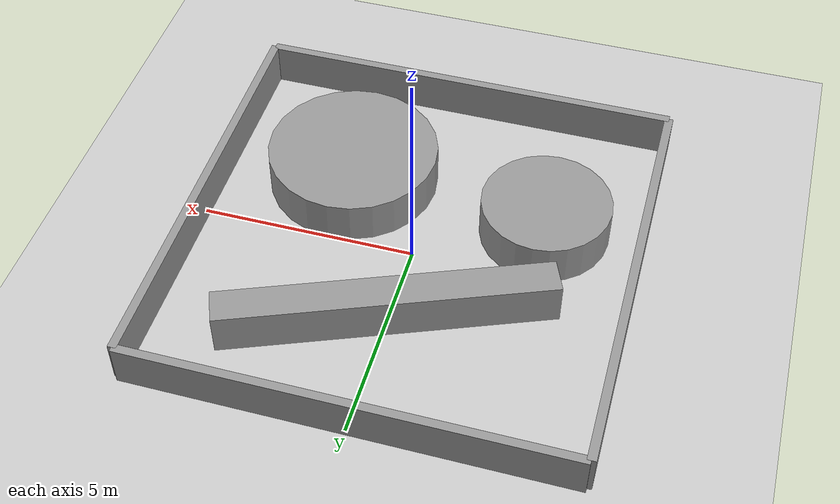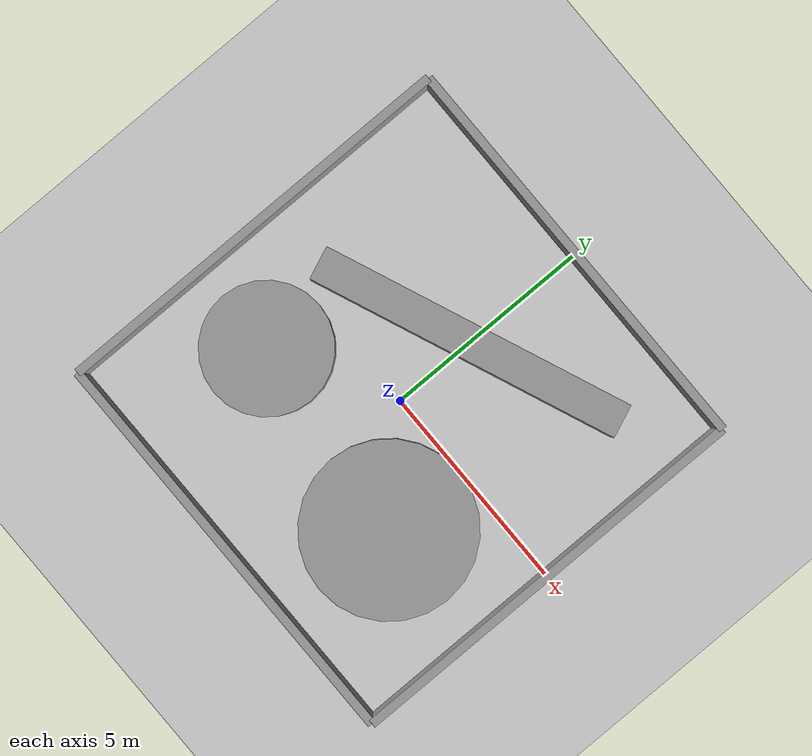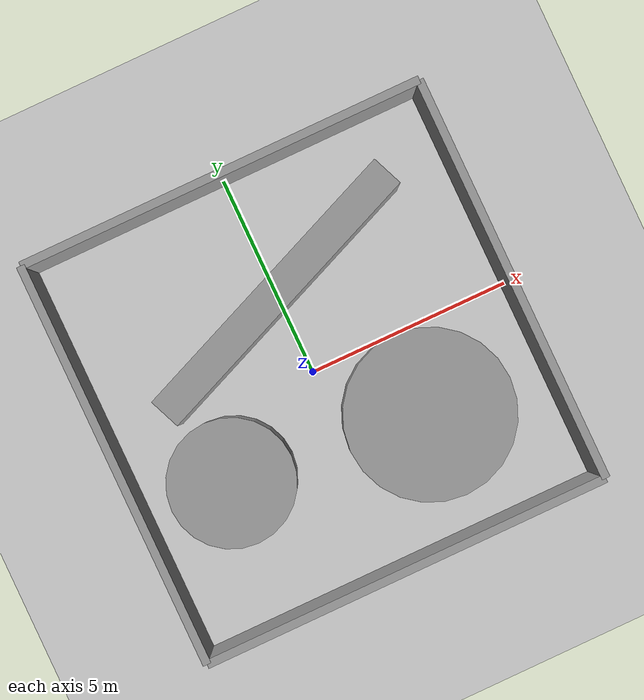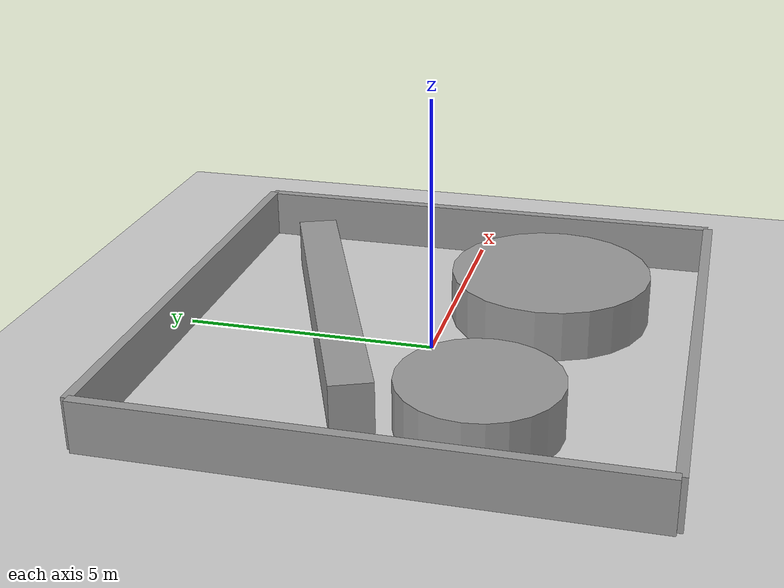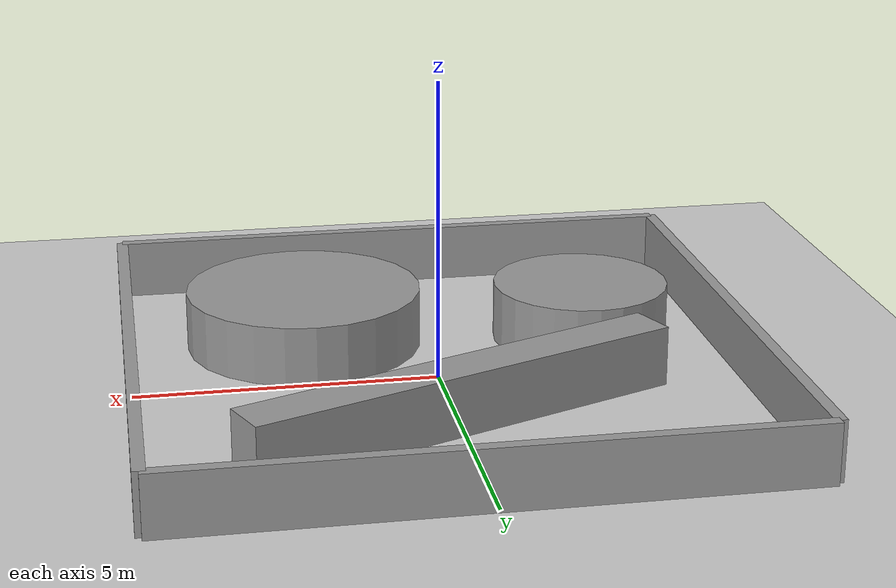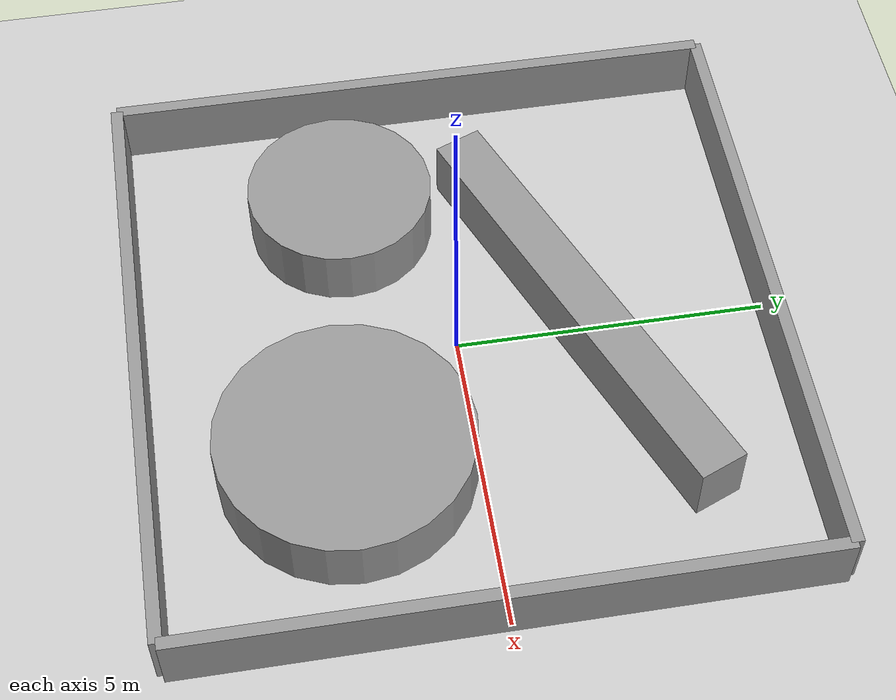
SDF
<sdf version="1.4">
 <world name="default">
  <scene><shadows>0</shadows></scene>
  <physics type="ode">
   <gravity>0 0 -9.81</gravity>
   <ode>
    <solver><type>quick</type><iters>20</iters><sor>1.0</sor></solver>
    <constraints>
     <cfm>0.0</cfm>
     <erp>0.2</erp>
     <contact_max_correcting_vel>100.0</contact_max_correcting_vel>
     <contact_surface_layer>0.0</contact_surface_layer>
    </constraints>
   </ode>
   <real_time_update_rate>1000</real_time_update_rate>
   <max_step_size>0.001</max_step_size>
   <real_time_factor>1</real_time_factor>
  </physics>
  <include><uri>model://sun</uri></include>
  <include><uri>model://ground_plane</uri></include>
  <include><uri>model://w1</uri><name>w1_bottom</name><pose>-5 0.0 0.0 0 0.0 -1.57</pose></include>
  <include><uri>model://w1</uri><name>w1_left</name><pose>0 5 0.0 0 0.0 0.0</pose></include>
  <include><uri>model://w1</uri><name>w1_top</name><pose>5 0.0 0.0 0 0.0 -1.57</pose></include>
  <include><uri>model://w1</uri><name>w1_right</name><pose>0 -5 0.0 0 0.0 0.0</pose></include>
  <include><uri>model://w2</uri><name>w2_wall</name><pose>0 2 0.0 0 0.0 0.392</pose></include>
  <include><uri>model://w3</uri><name>w3_right</name><pose>-2.75 -1.5 0.0 0 0.0 0.0</pose></include>
  <include><uri>model://w4</uri><name>w4_left</name><pose>2 -2 0.0 0 0.0 0.0</pose></include>
  <light name="marker_light" type="point">
   <cast_shadows>0</cast_shadows>
   <pose>0 0 3 0 0 0</pose>
   <diffuse>0.800000 0.800000 0.800000 1.000000</diffuse>
   <specular>0.100000 0.100000 0.100000 1.000000</specular>
   <attenuation>
    <range>1000.000000</range>
    <constant>0.900000</constant>
    <linear>0.010000</linear>
    <quadratic>0.001000</quadratic>
   </attenuation>
  </light>
  <light type="directional" name="sun">
   <cast_shadows>false</cast_shadows>
   <pose>0 0 10 0 0 0</pose>
   <diffuse>0.8 0.8 0.8 1</diffuse>
   <specular>0.2 0.2 0.2 1</specular>
   <attenuation>
    <range>100</range>
    <constant>0.9</constant>
    <linear>0.01</linear>
    <quadratic>0.001</quadratic>
   </attenuation>
   <direction>-0.5 0.1 -0.9</direction>
  </light>
 </world>
</sdf>

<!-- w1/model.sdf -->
<sdf version="1.5">
  <model name="grey_wall">
    <static>true</static>
    <link name="link">
      <pose>0 0 0.5 0 0 0</pose>
      <collision name="collision">
        <geometry>
          <box>
            <size>10 0.2 1</size>
          </box>
        </geometry>
      </collision>
      <visual name="visual">
        <cast_shadows>false</cast_shadows>
        <geometry>
          <box>
            <size>10 0.2 1</size>
          </box>
        </geometry>
        <material>
          <script>
            <uri>model://w1/materials/scripts</uri>
            <uri>model://w1/materials/textures</uri>
            <name>vrc/grey_wall</name>
          </script>
        </material>
      </visual>
    </link>
  </model>
</sdf>

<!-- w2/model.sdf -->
<sdf version="1.5">
  <model name="grey_wall">
    <static>true</static>
    <link name="link">
      <pose>0 0 0.5 0 0 0</pose>
      <collision name="collision">
        <geometry>
          <box>
            <size>7 0.8 1</size>
          </box>
        </geometry>
      </collision>
      <visual name="visual">
        <cast_shadows>false</cast_shadows>
        <geometry>
          <box>
            <size>7.5 0.8 1</size>
          </box>
        </geometry>
        <material>
          <script>
            <uri>model://w2/materials/scripts</uri>
            <uri>model://w2/materials/textures</uri>
            <name>vrc/grey_wall</name>
          </script>
        </material>
      </visual>
    </link>
  </model>
</sdf>

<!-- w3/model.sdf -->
<sdf version="1.5">
  <model name="grey_wall">
    <static>true</static>
    <link name="link">
      <pose>0 0 0.5 0 0 0</pose>
      <collision name="collision">
        <geometry>
          <cylinder>
            <radius>1.5</radius>
            <length>1</length>
          </cylinder>
        </geometry>
      </collision>
      <visual name="visual">
        <cast_shadows>false</cast_shadows>
        <geometry>
         <cylinder>
	    <radius>1.5</radius>
            <length>1</length>
	  </cylinder>
        </geometry>
        <material>
          <script>
            <uri>model://w4/materials/scripts</uri>
            <uri>model://w4/materials/textures</uri>
            <name>vrc/grey_wall</name>
          </script>
        </material>
      </visual>
    </link>
  </model>
</sdf>

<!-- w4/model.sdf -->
<sdf version="1.5">
  <model name="grey_wall">
    <static>true</static>
    <link name="link">
      <pose>0 0 0.5 0 0 0</pose>
      <collision name="collision">
        <geometry>
          <cylinder>
            <radius>2</radius>
            <length>1</length>
          </cylinder>
        </geometry>
      </collision>
      <visual name="visual">
        <cast_shadows>false</cast_shadows>
        <geometry>
         <cylinder>
	    <radius>2</radius>
            <length>1</length>
	  </cylinder>
        </geometry>
        <material>
          <script>
            <uri>model://w4/materials/scripts</uri>
            <uri>model://w4/materials/textures</uri>
            <name>vrc/grey_wall</name>
          </script>
        </material>
      </visual>
    </link>
  </model>
</sdf>
